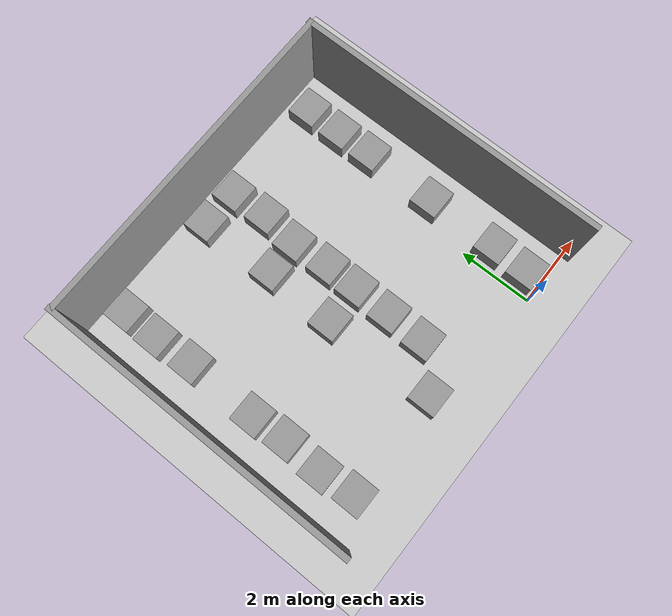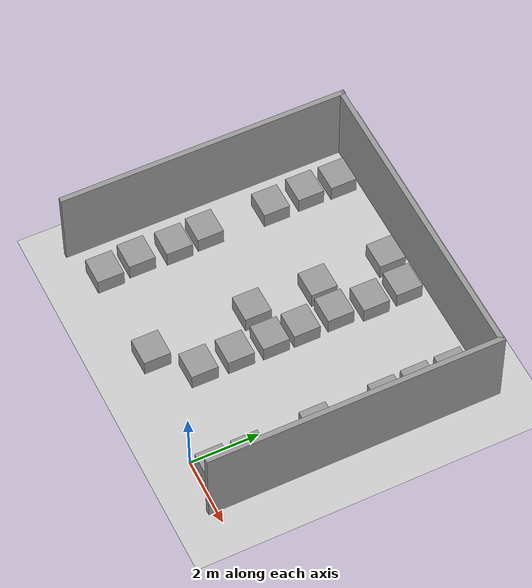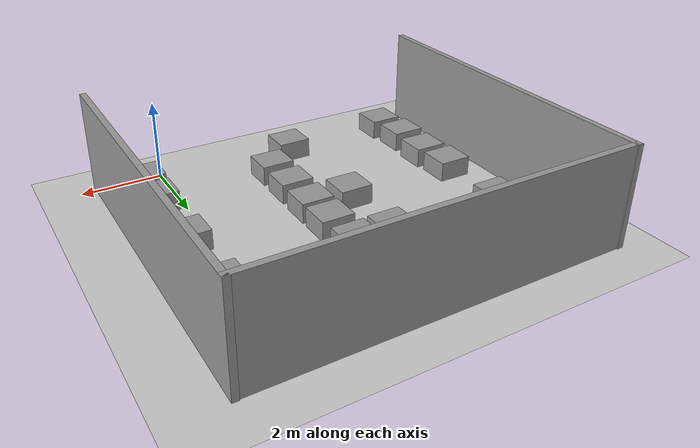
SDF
<sdf version="1.6">
 <world name="default">
  <light name="sun" type="directional">
   <cast_shadows>0</cast_shadows>
   <pose>0 0 10 0 -0 0</pose>
   <diffuse>0.8 0.8 0.8 1</diffuse>
   <specular>0.2 0.2 0.2 1</specular>
   <attenuation>
    <range>1000</range>
    <constant>0.9</constant>
    <linear>0.01</linear>
    <quadratic>0.001</quadratic>
   </attenuation>
   <direction>-0.5 0.1 -0.9</direction>
  </light>
  <model name="ground_plane">
   <static>1</static>
   <link name="link">
    <collision name="collision">
     <geometry><plane><normal>0 0 1</normal><size>100 100</size></plane></geometry>
     <surface>
      <contact><collide_bitmask>65535</collide_bitmask></contact>
      <friction><ode><mu>100</mu><mu2>50</mu2></ode></friction>
     </surface>
    </collision>
    <visual name="visual">
     <cast_shadows>0</cast_shadows>
     <geometry><plane><normal>0 0 1</normal><size>100 100</size></plane></geometry>
     <material>
      <script><uri>file://media/materials/scripts/gazebo.material</uri><name>Gazebo/Grey</name></script>
     </material>
    </visual>
   </link>
  </model>
  <gravity>0 0 -9.8</gravity>
  <magnetic_field>6e-06 2.3e-05 -4.2e-05</magnetic_field>
  <atmosphere type="adiabatic"/>
  <physics name="default_physics" default="0" type="ode">
   <max_step_size>0.001</max_step_size>
   <real_time_factor>1</real_time_factor>
   <real_time_update_rate>1000</real_time_update_rate>
  </physics>
  <scene><ambient>0.4 0.4 0.4 1</ambient><background>0.7 0.7 0.7 1</background><shadows>1</shadows></scene>
  <audio><device>default</device></audio>
  <spherical_coordinates>
   <surface_model>EARTH_WGS84</surface_model>
   <latitude_deg>0</latitude_deg>
   <longitude_deg>0</longitude_deg>
   <elevation>0</elevation>
   <heading_deg>0</heading_deg>
  </spherical_coordinates>
  <model name="unit_box">
   <pose>0.518834 0.484919 0.249258 0 -0 1e-06</pose>
   <link name="link">
    <inertial>
     <mass>1</mass>
     <inertia>
      <ixx>0.166667</ixx>
      <ixy>0</ixy>
      <ixz>0</ixz>
      <iyy>0.166667</iyy>
      <iyz>0</iyz>
      <izz>0.166667</izz>
     </inertia>
    </inertial>
    <collision name="collision">
     <geometry><box><size>0.832461 0.776172 0.498517</size></box></geometry>
    </collision>
    <visual name="visual">
     <geometry><box><size>0.832461 0.776172 0.498517</size></box></geometry>
     <material>
      <script><name>Gazebo/Grey</name><uri>file://media/materials/scripts/gazebo.material</uri></script>
     </material>
    </visual>
   </link>
  </model>
  <model name="unit_box_clone">
   <pose>0.5497 1.49077 0.249258 0 -0 1e-06</pose>
   <link name="link">
    <inertial>
     <mass>1</mass>
     <inertia>
      <ixx>0.166667</ixx>
      <ixy>0</ixy>
      <ixz>0</ixz>
      <iyy>0.166667</iyy>
      <iyz>0</iyz>
      <izz>0.166667</izz>
     </inertia>
    </inertial>
    <collision name="collision">
     <geometry><box><size>0.832462 0.776172 0.498517</size></box></geometry>
    </collision>
    <visual name="visual">
     <geometry><box><size>0.832462 0.776172 0.498517</size></box></geometry>
     <material>
      <script><name>Gazebo/Grey</name><uri>file://media/materials/scripts/gazebo.material</uri></script>
     </material>
    </visual>
   </link>
  </model>
  <model name="unit_box_clone_0">
   <pose>0.542038 3.47351 0.249258 0 -0 1e-06</pose>
   <link name="link">
    <inertial>
     <mass>1</mass>
     <inertia>
      <ixx>0.166667</ixx>
      <ixy>0</ixy>
      <ixz>0</ixz>
      <iyy>0.166667</iyy>
      <iyz>0</iyz>
      <izz>0.166667</izz>
     </inertia>
    </inertial>
    <collision name="collision">
     <geometry><box><size>0.832462 0.776172 0.498517</size></box></geometry>
    </collision>
    <visual name="visual">
     <geometry><box><size>0.832462 0.776172 0.498517</size></box></geometry>
     <material>
      <script><name>Gazebo/Grey</name><uri>file://media/materials/scripts/gazebo.material</uri></script>
     </material>
    </visual>
   </link>
  </model>
  <model name="unit_box_clone_1">
   <pose>0.55967 5.47509 0.249258 0 -0 1e-06</pose>
   <link name="link">
    <inertial>
     <mass>1</mass>
     <inertia>
      <ixx>0.166667</ixx>
      <ixy>0</ixy>
      <ixz>0</ixz>
      <iyy>0.166667</iyy>
      <iyz>0</iyz>
      <izz>0.166667</izz>
     </inertia>
    </inertial>
    <collision name="collision">
     <geometry><box><size>0.832462 0.776172 0.498517</size></box></geometry>
    </collision>
    <visual name="visual">
     <geometry><box><size>0.832462 0.776172 0.498517</size></box></geometry>
     <material>
      <script><name>Gazebo/Grey</name><uri>file://media/materials/scripts/gazebo.material</uri></script>
     </material>
    </visual>
   </link>
  </model>
  <model name="unit_box_clone_2">
   <pose>0.545616 7.45285 0.249258 0 -0 1e-06</pose>
   <link name="link">
    <inertial>
     <mass>1</mass>
     <inertia>
      <ixx>0.166667</ixx>
      <ixy>0</ixy>
      <ixz>0</ixz>
      <iyy>0.166667</iyy>
      <iyz>0</iyz>
      <izz>0.166667</izz>
     </inertia>
    </inertial>
    <collision name="collision">
     <geometry><box><size>0.832462 0.776172 0.498517</size></box></geometry>
    </collision>
    <visual name="visual">
     <geometry><box><size>0.832462 0.776172 0.498517</size></box></geometry>
     <material>
      <script><name>Gazebo/Grey</name><uri>file://media/materials/scripts/gazebo.material</uri></script>
     </material>
    </visual>
   </link>
  </model>
  <model name="unit_box_clone_3">
   <pose>0.543198 6.45342 0.249258 0 -0 1e-06</pose>
   <link name="link">
    <inertial>
     <mass>1</mass>
     <inertia>
      <ixx>0.166667</ixx>
      <ixy>0</ixy>
      <ixz>0</ixz>
      <iyy>0.166667</iyy>
      <iyz>0</iyz>
      <izz>0.166667</izz>
     </inertia>
    </inertial>
    <collision name="collision">
     <geometry><box><size>0.832462 0.776172 0.498517</size></box></geometry>
    </collision>
    <visual name="visual">
     <geometry><box><size>0.832462 0.776172 0.498517</size></box></geometry>
     <material>
      <script><name>Gazebo/Grey</name><uri>file://media/materials/scripts/gazebo.material</uri></script>
     </material>
    </visual>
   </link>
  </model>
  <model name="unit_box_clone_4">
   <pose>-2.47532 7.50096 0.249258 0 -0 1e-06</pose>
   <link name="link">
    <inertial>
     <mass>1</mass>
     <inertia>
      <ixx>0.166667</ixx>
      <ixy>0</ixy>
      <ixz>0</ixz>
      <iyy>0.166667</iyy>
      <iyz>0</iyz>
      <izz>0.166667</izz>
     </inertia>
    </inertial>
    <collision name="collision">
     <geometry><box><size>0.832462 0.776172 0.498517</size></box></geometry>
    </collision>
    <visual name="visual">
     <geometry><box><size>0.832462 0.776172 0.498517</size></box></geometry>
     <material>
      <script><name>Gazebo/Grey</name><uri>file://media/materials/scripts/gazebo.material</uri></script>
     </material>
    </visual>
   </link>
  </model>
  <model name="unit_box_clone_5">
   <pose>-2.52887 5.46662 0.249258 0 -0 1e-06</pose>
   <link name="link">
    <inertial>
     <mass>1</mass>
     <inertia>
      <ixx>0.166667</ixx>
      <ixy>0</ixy>
      <ixz>0</ixz>
      <iyy>0.166667</iyy>
      <iyz>0</iyz>
      <izz>0.166667</izz>
     </inertia>
    </inertial>
    <collision name="collision">
     <geometry><box><size>0.832462 0.776172 0.498517</size></box></geometry>
    </collision>
    <visual name="visual">
     <geometry><box><size>0.832462 0.776172 0.498517</size></box></geometry>
     <material>
      <script><name>Gazebo/Grey</name><uri>file://media/materials/scripts/gazebo.material</uri></script>
     </material>
    </visual>
   </link>
  </model>
  <model name="unit_box_clone_6">
   <pose>-2.4761 4.43201 0.249258 0 -0 1e-06</pose>
   <link name="link">
    <inertial>
     <mass>1</mass>
     <inertia>
      <ixx>0.166667</ixx>
      <ixy>0</ixy>
      <ixz>0</ixz>
      <iyy>0.166667</iyy>
      <iyz>0</iyz>
      <izz>0.166667</izz>
     </inertia>
    </inertial>
    <collision name="collision">
     <geometry><box><size>0.832462 0.776172 0.498517</size></box></geometry>
    </collision>
    <visual name="visual">
     <geometry><box><size>0.832462 0.776172 0.498517</size></box></geometry>
     <material>
      <script><name>Gazebo/Grey</name><uri>file://media/materials/scripts/gazebo.material</uri></script>
     </material>
    </visual>
   </link>
  </model>
  <model name="unit_box_clone_7">
   <pose>-2.47412 3.51977 0.249258 0 -0 1e-06</pose>
   <link name="link">
    <inertial>
     <mass>1</mass>
     <inertia>
      <ixx>0.166667</ixx>
      <ixy>0</ixy>
      <ixz>0</ixz>
      <iyy>0.166667</iyy>
      <iyz>0</iyz>
      <izz>0.166667</izz>
     </inertia>
    </inertial>
    <collision name="collision">
     <geometry><box><size>0.832462 0.776172 0.498517</size></box></geometry>
    </collision>
    <visual name="visual">
     <geometry><box><size>0.832462 0.776172 0.498517</size></box></geometry>
     <material>
      <script><name>Gazebo/Grey</name><uri>file://media/materials/scripts/gazebo.material</uri></script>
     </material>
    </visual>
   </link>
  </model>
  <model name="unit_box_clone_8">
   <pose>-2.50304 1.43642 0.249258 0 -0 1e-06</pose>
   <link name="link">
    <inertial>
     <mass>1</mass>
     <inertia>
      <ixx>0.166667</ixx>
      <ixy>0</ixy>
      <ixz>0</ixz>
      <iyy>0.166667</iyy>
      <iyz>0</iyz>
      <izz>0.166667</izz>
     </inertia>
    </inertial>
    <collision name="collision">
     <geometry><box><size>0.832462 0.776172 0.498517</size></box></geometry>
    </collision>
    <visual name="visual">
     <geometry><box><size>0.832462 0.776172 0.498517</size></box></geometry>
     <material>
      <script><name>Gazebo/Grey</name><uri>file://media/materials/scripts/gazebo.material</uri></script>
     </material>
    </visual>
   </link>
  </model>
  <model name="unit_box_clone_9">
   <pose>-2.48784 2.49434 0.249258 0 -0 1e-06</pose>
   <link name="link">
    <inertial>
     <mass>1</mass>
     <inertia>
      <ixx>0.166667</ixx>
      <ixy>0</ixy>
      <ixz>0</ixz>
      <iyy>0.166667</iyy>
      <iyz>0</iyz>
      <izz>0.166667</izz>
     </inertia>
    </inertial>
    <collision name="collision">
     <geometry><box><size>0.832462 0.776172 0.498517</size></box></geometry>
    </collision>
    <visual name="visual">
     <geometry><box><size>0.832462 0.776172 0.498517</size></box></geometry>
     <material>
      <script><name>Gazebo/Grey</name><uri>file://media/materials/scripts/gazebo.material</uri></script>
     </material>
    </visual>
   </link>
  </model>
  <model name="unit_box_clone_10">
   <pose>-3.45923 0.496209 0.249258 0 -0 1e-06</pose>
   <link name="link">
    <inertial>
     <mass>1</mass>
     <inertia>
      <ixx>0.166667</ixx>
      <ixy>0</ixy>
      <ixz>0</ixz>
      <iyy>0.166667</iyy>
      <iyz>0</iyz>
      <izz>0.166667</izz>
     </inertia>
    </inertial>
    <collision name="collision">
     <geometry><box><size>0.832462 0.776172 0.498517</size></box></geometry>
    </collision>
    <visual name="visual">
     <geometry><box><size>0.832462 0.776172 0.498517</size></box></geometry>
     <material>
      <script><name>Gazebo/Grey</name><uri>file://media/materials/scripts/gazebo.material</uri></script>
     </material>
    </visual>
   </link>
  </model>
  <model name="unit_box_clone_11">
   <pose>-6.40158 0.469192 0.249258 0 -0 1e-06</pose>
   <link name="link">
    <inertial>
     <mass>1</mass>
     <inertia>
      <ixx>0.166667</ixx>
      <ixy>0</ixy>
      <ixz>0</ixz>
      <iyy>0.166667</iyy>
      <iyz>0</iyz>
      <izz>0.166667</izz>
     </inertia>
    </inertial>
    <collision name="collision">
     <geometry><box><size>0.832462 0.776172 0.498517</size></box></geometry>
    </collision>
    <visual name="visual">
     <geometry><box><size>0.832462 0.776172 0.498517</size></box></geometry>
     <material>
      <script><name>Gazebo/Grey</name><uri>file://media/materials/scripts/gazebo.material</uri></script>
     </material>
    </visual>
   </link>
  </model>
  <model name="unit_box_clone_12">
   <pose>-6.48918 1.4437 0.249258 0 -0 1e-06</pose>
   <link name="link">
    <inertial>
     <mass>1</mass>
     <inertia>
      <ixx>0.166667</ixx>
      <ixy>0</ixy>
      <ixz>0</ixz>
      <iyy>0.166667</iyy>
      <iyz>0</iyz>
      <izz>0.166667</izz>
     </inertia>
    </inertial>
    <collision name="collision">
     <geometry><box><size>0.832462 0.776172 0.498517</size></box></geometry>
    </collision>
    <visual name="visual">
     <geometry><box><size>0.832462 0.776172 0.498517</size></box></geometry>
     <material>
      <script><name>Gazebo/Grey</name><uri>file://media/materials/scripts/gazebo.material</uri></script>
     </material>
    </visual>
   </link>
  </model>
  <model name="unit_box_clone_13">
   <pose>-6.43074 2.53456 0.249258 0 -0 1e-06</pose>
   <link name="link">
    <inertial>
     <mass>1</mass>
     <inertia>
      <ixx>0.166667</ixx>
      <ixy>0</ixy>
      <ixz>0</ixz>
      <iyy>0.166667</iyy>
      <iyz>0</iyz>
      <izz>0.166667</izz>
     </inertia>
    </inertial>
    <collision name="collision">
     <geometry><box><size>0.832462 0.776172 0.498517</size></box></geometry>
    </collision>
    <visual name="visual">
     <geometry><box><size>0.832462 0.776172 0.498517</size></box></geometry>
     <material>
      <script><name>Gazebo/Grey</name><uri>file://media/materials/scripts/gazebo.material</uri></script>
     </material>
    </visual>
   </link>
  </model>
  <model name="unit_box_clone_14">
   <pose>-6.48652 3.48844 0.249258 0 -0 1e-06</pose>
   <link name="link">
    <inertial>
     <mass>1</mass>
     <inertia>
      <ixx>0.166667</ixx>
      <ixy>0</ixy>
      <ixz>0</ixz>
      <iyy>0.166667</iyy>
      <iyz>0</iyz>
      <izz>0.166667</izz>
     </inertia>
    </inertial>
    <collision name="collision">
     <geometry><box><size>0.832462 0.776172 0.498517</size></box></geometry>
    </collision>
    <visual name="visual">
     <geometry><box><size>0.832462 0.776172 0.498517</size></box></geometry>
     <material>
      <script><name>Gazebo/Grey</name><uri>file://media/materials/scripts/gazebo.material</uri></script>
     </material>
    </visual>
   </link>
  </model>
  <model name="unit_box_clone_15">
   <pose>-6.45405 5.48233 0.249258 0 -0 1e-06</pose>
   <link name="link">
    <inertial>
     <mass>1</mass>
     <inertia>
      <ixx>0.166667</ixx>
      <ixy>0</ixy>
      <ixz>0</ixz>
      <iyy>0.166667</iyy>
      <iyz>0</iyz>
      <izz>0.166667</izz>
     </inertia>
    </inertial>
    <collision name="collision">
     <geometry><box><size>0.832462 0.776172 0.498517</size></box></geometry>
    </collision>
    <visual name="visual">
     <geometry><box><size>0.832462 0.776172 0.498517</size></box></geometry>
     <material>
      <script><name>Gazebo/Grey</name><uri>file://media/materials/scripts/gazebo.material</uri></script>
     </material>
    </visual>
   </link>
  </model>
  <model name="unit_box_clone_16">
   <pose>-6.50367 6.55587 0.249258 0 -0 1e-06</pose>
   <link name="link">
    <inertial>
     <mass>1</mass>
     <inertia>
      <ixx>0.166667</ixx>
      <ixy>0</ixy>
      <ixz>0</ixz>
      <iyy>0.166667</iyy>
      <iyz>0</iyz>
      <izz>0.166667</izz>
     </inertia>
    </inertial>
    <collision name="collision">
     <geometry><box><size>0.832462 0.776172 0.498517</size></box></geometry>
    </collision>
    <visual name="visual">
     <geometry><box><size>0.832462 0.776172 0.498517</size></box></geometry>
     <material>
      <script><name>Gazebo/Grey</name><uri>file://media/materials/scripts/gazebo.material</uri></script>
     </material>
    </visual>
   </link>
  </model>
  <model name="unit_box_clone_17">
   <pose>-6.48562 7.5467 0.249258 0 -0 1e-06</pose>
   <link name="link">
    <inertial>
     <mass>1</mass>
     <inertia>
      <ixx>0.166667</ixx>
      <ixy>0</ixy>
      <ixz>0</ixz>
      <iyy>0.166667</iyy>
      <iyz>0</iyz>
      <izz>0.166667</izz>
     </inertia>
    </inertial>
    <collision name="collision">
     <geometry><box><size>0.832462 0.776172 0.498517</size></box></geometry>
    </collision>
    <visual name="visual">
     <geometry><box><size>0.832462 0.776172 0.498517</size></box></geometry>
     <material>
      <script><name>Gazebo/Grey</name><uri>file://media/materials/scripts/gazebo.material</uri></script>
     </material>
    </visual>
   </link>
  </model>
  <model name="unit_box_clone_19">
   <pose>-2.42105 6.48001 0.249258 0 -0 1e-06</pose>
   <link name="link">
    <inertial>
     <mass>1</mass>
     <inertia>
      <ixx>0.166667</ixx>
      <ixy>0</ixy>
      <ixz>0</ixz>
      <iyy>0.166667</iyy>
      <iyz>0</iyz>
      <izz>0.166667</izz>
     </inertia>
    </inertial>
    <collision name="collision">
     <geometry><box><size>0.832462 0.776172 0.498517</size></box></geometry>
    </collision>
    <visual name="visual">
     <geometry><box><size>0.832462 0.776172 0.498517</size></box></geometry>
     <material>
      <script><name>Gazebo/Grey</name><uri>file://media/materials/scripts/gazebo.material</uri></script>
     </material>
    </visual>
   </link>
  </model>
  <model name="unit_box_clone_20">
   <pose>-3.53767 3.50066 0.249258 0 -0 1e-06</pose>
   <link name="link">
    <inertial>
     <mass>1</mass>
     <inertia>
      <ixx>0.166667</ixx>
      <ixy>0</ixy>
      <ixz>0</ixz>
      <iyy>0.166667</iyy>
      <iyz>0</iyz>
      <izz>0.166667</izz>
     </inertia>
    </inertial>
    <collision name="collision">
     <geometry><box><size>0.832462 0.776172 0.498517</size></box></geometry>
    </collision>
    <visual name="visual">
     <geometry><box><size>0.832462 0.776172 0.498517</size></box></geometry>
     <material>
      <script><name>Gazebo/Grey</name><uri>file://media/materials/scripts/gazebo.material</uri></script>
     </material>
    </visual>
   </link>
  </model>
  <model name="unit_box_clone_21">
   <pose>-3.4752 5.44171 0.249258 0 -0 1e-06</pose>
   <link name="link">
    <inertial>
     <mass>1</mass>
     <inertia>
      <ixx>0.166667</ixx>
      <ixy>0</ixy>
      <ixz>0</ixz>
      <iyy>0.166667</iyy>
      <iyz>0</iyz>
      <izz>0.166667</izz>
     </inertia>
    </inertial>
    <collision name="collision">
     <geometry><box><size>0.832462 0.776172 0.498517</size></box></geometry>
    </collision>
    <visual name="visual">
     <geometry><box><size>0.832462 0.776172 0.498517</size></box></geometry>
     <material>
      <script><name>Gazebo/Grey</name><uri>file://media/materials/scripts/gazebo.material</uri></script>
     </material>
    </visual>
   </link>
  </model>
  <model name="unit_box_clone_22">
   <pose>-3.51755 7.5323 0.249258 0 -0 1e-06</pose>
   <link name="link">
    <inertial>
     <mass>1</mass>
     <inertia>
      <ixx>0.166667</ixx>
      <ixy>0</ixy>
      <ixz>0</ixz>
      <iyy>0.166667</iyy>
      <iyz>0</iyz>
      <izz>0.166667</izz>
     </inertia>
    </inertial>
    <collision name="collision">
     <geometry><box><size>0.832462 0.776172 0.498517</size></box></geometry>
    </collision>
    <visual name="visual">
     <geometry><box><size>0.832462 0.776172 0.498517</size></box></geometry>
     <material>
      <script><name>Gazebo/Grey</name><uri>file://media/materials/scripts/gazebo.material</uri></script>
     </material>
    </visual>
   </link>
  </model>
  <model name="building_template_model">
   <pose>-2.98967 4.02339 0 0 -0 0</pose>
   <link name="Wall_0">
    <collision name="Wall_0_Collision">
     <geometry><box><size>8.48924 0.15 2.5</size></box></geometry>
     <pose>0 0 1.25 0 -0 0</pose>
    </collision>
    <visual name="Wall_0_Visual">
     <pose>0 0 1.25 0 -0 0</pose>
     <geometry><box><size>8.48924 0.15 2.5</size></box></geometry>
     <material>
      <script><uri>file://media/materials/scripts/gazebo.material</uri><name>Gazebo/Grey</name></script>
      <ambient>1 1 1 1</ambient>
     </material>
     <meta><layer>0</layer></meta>
    </visual>
    <pose>-4.55 0.007581 0 0 -0 1.5708</pose>
   </link>
   <link name="Wall_1">
    <collision name="Wall_1_Collision">
     <geometry><box><size>9.25 0.15 2.5</size></box></geometry>
     <pose>0 0 1.25 0 -0 0</pose>
    </collision>
    <visual name="Wall_1_Visual">
     <pose>0 0 1.25 0 -0 0</pose>
     <geometry><box><size>9.25 0.15 2.5</size></box></geometry>
     <material>
      <script><uri>file://media/materials/scripts/gazebo.material</uri><name>Gazebo/Grey</name></script>
      <ambient>1 1 1 1</ambient>
     </material>
     <meta><layer>0</layer></meta>
    </visual>
    <pose>0 4.15427 0 0 -0 0</pose>
   </link>
   <link name="Wall_4">
    <collision name="Wall_4_Collision">
     <geometry><box><size>8.5044 0.15 2.5</size></box></geometry>
     <pose>0 0 1.25 0 -0 0</pose>
    </collision>
    <visual name="Wall_4_Visual">
     <pose>0 0 1.25 0 -0 0</pose>
     <geometry><box><size>8.5044 0.15 2.5</size></box></geometry>
     <material>
      <script><uri>file://media/materials/scripts/gazebo.material</uri><name>Gazebo/Grey</name></script>
      <ambient>1 1 1 1</ambient>
     </material>
     <meta><layer>0</layer></meta>
    </visual>
    <pose>4.55 -0 0 0 -0 -1.5708</pose>
   </link>
   <static>1</static>
  </model>
 </world>
</sdf>
